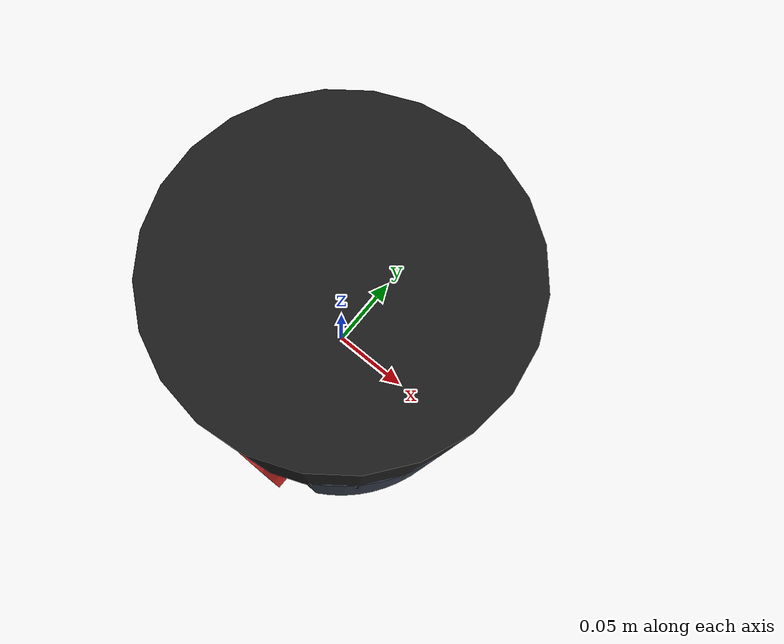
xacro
<?xml version="1.0"?>
<robot name="kamu_robotu" xmlns:xacro="https://www.ros.org/wiki/xacro" >

  <xacro:arg name="laser_visual" default="false"/>
  <xacro:arg name="imu_visual"   default="false"/>
  <xacro:property name="wheel_radius" value="0.02634" />
  <xacro:property name="wheel_length" value="0.01" />
  <xacro:property name="wheel_seperation" value="0.192" />
  <xacro:property name="chasis_height" value="0.115" />

  <material name="black">
    <color rgba="0.0 0.0 0.0 1.0"/>
  </material>
  <material name="blue">
    <color rgba="0.203125 0.23828125 0.28515625 1.0"/>
  </material>
  <material name="green">
    <color rgba="0.0 0.8 0.0 1.0"/>
  </material>
  <material name="grey">
    <color rgba="0.2 0.2 0.2 1.0"/>
  </material>
  <material name="orange">
    <color rgba="1.0 0.423529411765 0.0392156862745 1.0"/>
  </material>
  <material name="brown">
    <color rgba="0.870588235294 0.811764705882 0.764705882353 1.0"/>
  </material>
  <material name="red">
    <color rgba="0.80078125 0.12890625 0.1328125 1.0"/>
  </material>
  <material name="white">
    <color rgba="1.0 1.0 1.0 1.0"/>
  </material>

  <gazebo reference="base_link">
    <material>Gazebo/FlatBlack</material>
  </gazebo>
  <gazebo reference="wheel_left_link">
    <material>Gazebo/Red</material>
  </gazebo>
  <gazebo reference="wheel_right_link">
    <material>Gazebo/Red</material>
  </gazebo>

  <link name="base_link">
    <!-- pose and inertial -->
    <pose>0 0 0.1 0 0 0</pose>

    <inertial>
      <mass value="8.2573504e-01"/>
      <origin rpy="0 0 0" xyz="0 0 0.1"/>
    <inertia ixx="2.2124416e-03" ixy="-1.2294101e-05" ixz="3.4938785e-05"
               iyy="2.1193702e-03" iyz="-5.0120904e-06"
               izz="2.0064271e-03" />
    </inertial>

    <collision name="collision_chassis">
      <geometry>
        <cylinder length="0.015" radius="0.1"/>
      </geometry>
    </collision>

    <visual>
      <pose>0 0 0 0 1.57080 1.5708</pose>
      <origin rpy="0 0 0" xyz="0 0 0"/>
      <geometry>
        <mesh filename="package://kamu_robotu_gazebo/models/meshes/base.STL" scale="1 1 1"/>
      </geometry>
      <material name="blue"/>
    </visual>

    <!-- caster front -->
    <collision name="caster_front_collision">
      <origin rpy=" 0 0 0" xyz="0.05 0 -${chasis_height/2}"/>
      <geometry>
        <sphere radius="0.0239"/>
      </geometry>
      <surface>
        <friction>
          <ode>
            <mu>0</mu>
            <mu2>0</mu2>
            <slip1>1.0</slip1>
            <slip2>1.0</slip2>
          </ode>
        </friction>
      </surface>
    </collision>

    <visual name="caster_front_visual">
      <origin rpy=" 0 0 0" xyz="0.05 0 -${chasis_height/2}"/>
      <geometry>
        <sphere radius="0.0239"/>
      </geometry>
    </visual>

    <!-- caster back -->
    <collision name="caster_back_collision">
      <origin rpy=" 0 0 0" xyz="-0.05 0 -${chasis_height/2}"/>
      <geometry>
        <sphere radius="0.0238"/>
      </geometry>
      <surface>
        <friction>
          <ode>
            <mu>0</mu>
            <mu2>0</mu2>
            <slip1>1.0</slip1>
            <slip2>1.0</slip2>
          </ode>
        </friction>
      </surface>
    </collision>

    <visual name="caster_back_visual">
      <origin rpy=" 0 0 0" xyz="-0.05 0 -${chasis_height/2}"/>
      <geometry>
        <sphere radius="0.0239"/>
      </geometry>
    </visual>
  </link>

  <!-- Create wheel right -->
  <link name="wheel_right_link">
    <inertial>
      <origin rpy="0 1.5707 1.5707" xyz="0 0 0"/>
      <mass value="2.8498940e-02" />
      <inertia ixx="1.1175580e-05" ixy="-4.2369783e-11" ixz="-5.9381719e-09"
               iyy="1.1192413e-05" iyz="-1.4400107e-11"
               izz="2.0712558e-05" />
    </inertial>

    <collision name="wheel_right_link_collision">
      <origin rpy="0 1.5707 1.5707" xyz="0 0 0" />
      <geometry>
        <cylinder length="${wheel_length}" radius="${wheel_radius}"/>
      </geometry>
    </collision>

    <visual name="wheel_right_link_visual">
      <origin rpy="0 1.5707 1.5707" xyz="0 0 0"/>
      <geometry>
        <cylinder length="${wheel_length}" radius="${wheel_radius}"/>
      </geometry>
    </visual>
  </link>

  <!-- Left Wheel link -->
  <link name="wheel_left_link">
    <inertial>
      <origin rpy="0 1.5707 1.5707" xyz="0 0 0"/>
      <mass value="2.8498940e-02" />
      <inertia ixx="1.1175580e-05" ixy="-4.2369783e-11" ixz="-5.9381719e-09"
               iyy="1.1192413e-05" iyz="-1.4400107e-11"
               izz="2.0712558e-05" />
    </inertial>

    <collision name="wheel_left_link_collision">
      <origin rpy="0 1.5707 1.5707" xyz="0 0 0" />
      <geometry>
        <cylinder length="${wheel_length}" radius="${wheel_radius}"/>
      </geometry>
    </collision>

    <visual name="wheel_left_link_visual">
      <origin rpy="0 1.5707 1.5707" xyz="0 0 0"/>
      <geometry>
        <cylinder length="${wheel_length}" radius="${wheel_radius}"/>
      </geometry>
    </visual>
  </link>

  <!--   Joint for right wheel  -->
  <joint name="wheel_right_joint" type="continuous">
    <origin rpy="0 0 0" xyz="0 ${wheel_seperation/2} -${chasis_height/2}"/>
    <child link="wheel_right_link" />
    <parent link="base_link"/>
    <axis rpy="0 0 0" xyz="0 1 0"/>
    <limit effort="10000" velocity="1000"/>
    <joint_properties damping="1.0" friction="1.0" />
  </joint>

  <!--   Joint for left wheel  -->
  <joint name="wheel_left_joint" type="continuous">
    <origin rpy="0 0 0" xyz="0 -${wheel_seperation/2} -${chasis_height/2}"/>
    <child link="wheel_left_link" />
    <parent link="base_link"/>
    <axis rpy="0 0 0" xyz="0 1 0"/>
    <limit effort="10000" velocity="1000"/>
    <joint_properties damping="1.0" friction="1.0" />
  </joint>

  <joint name="imu_joint" type="fixed">
    <parent link="base_link"/>
    <child link="imu_link"/>
    <origin xyz="-0.032 0 ${chasis_height}" rpy="0 0 0"/>
  </joint>

  <link name="imu_link"/>

  <joint name="base_footprint_joint" type="fixed">
    <parent link="base_link"/>
    <child link="base_footprint"/>
    <origin xyz="0 0 -0.12" rpy="0 0 0"/>
  </joint>

  <link name="base_footprint"/>

  <joint name="scan_joint" type="fixed">
    <parent link="base_footprint"/>
    <child link="base_scan"/>
    <origin xyz="0 0 ${chasis_height+0.085}" rpy="0 0 0"/>
  </joint>

  <link name="base_scan">
    <visual>
      <origin xyz="0 0 0" rpy="0 0 0"/>
      <geometry>
        <cylinder length="0.1" radius="0.1"/>
      </geometry>
      <material name="dark"/>
    </visual>

    <collision>
      <origin xyz="0 0 0" rpy="0 0 0"/>
      <geometry>
        <cylinder length="0.0315" radius="0.055"/>
      </geometry>
    </collision>

    <inertial>
      <mass value="0.114" />
      <origin xyz="0 0 0" />
      <inertia ixx="0.001" ixy="0.0" ixz="0.0"
               iyy="0.001" iyz="0.0"
               izz="0.001" />
    </inertial>
  </link>

  <!-- Gazebo side -->

  <gazebo reference="imu_link">
    <sensor type="imu" name="imu">
      <always_on>true</always_on>
      <visualize>$(arg imu_visual)</visualize>
    </sensor>
    <material>Gazebo/FlatBlack</material>
  </gazebo>

  <gazebo>
    <plugin name="kamu_robotu_controller" filename="libgazebo_ros_diff_drive.so">
      <legacyMode>false</legacyMode>
      <alwaysOn>true</alwaysOn>
      <updateRate>20</updateRate>
      <leftJoint>wheel_left_joint</leftJoint>
      <rightJoint>wheel_right_joint</rightJoint>
      <wheelSeparation>0.2</wheelSeparation>
      <wheelDiameter>0.048</wheelDiameter>
      <wheelAcceleration>1</wheelAcceleration>
      <wheelTorque>10</wheelTorque>
      <commandTopic>cmd_vel</commandTopic>
      <odometryTopic>odom</odometryTopic>
      <odometryFrame>odom</odometryFrame>
      <robotBaseFrame>base_link</robotBaseFrame>
    </plugin>
  </gazebo>

  <gazebo>
    <plugin name="imu_plugin" filename="libgazebo_ros_imu.so">
      <alwaysOn>true</alwaysOn>
      <bodyName>imu_link</bodyName>
      <frameName>imu_link</frameName>
      <topicName>imu</topicName>
      <serviceName>imu_service</serviceName>
      <gaussianNoise>0.0</gaussianNoise>
      <updateRate>200</updateRate>
      <imu>
        <noise>
          <type>gaussian</type>
          <rate>
            <mean>0.0</mean>
            <stddev>2e-4</stddev>
            <bias_mean>0.0000075</bias_mean>
            <bias_stddev>0.0000008</bias_stddev>
          </rate>
          <accel>
            <mean>0.0</mean>
            <stddev>1.7e-2</stddev>
            <bias_mean>0.1</bias_mean>
            <bias_stddev>0.001</bias_stddev>
          </accel>
        </noise>
      </imu>
    </plugin>
  </gazebo>

  <gazebo reference="base_scan">
    <material>Gazebo/FlatBlack</material>
    <sensor type="ray" name="lds_lfcd_sensor">
      <pose>0 0 -0.2 0 0 0</pose>
      <visualize>$(arg laser_visual)</visualize>
      <update_rate>1</update_rate>
      <ray>
        <scan>
          <horizontal>
            <samples>128</samples>
            <resolution>1</resolution>
            <min_angle>0.0</min_angle>
            <max_angle>6.28319</max_angle>
          </horizontal>
        </scan>
        <range>
          <min>0.092</min>
          <max>1.2</max>
          <resolution>0.02</resolution>
        </range>
        <noise>
          <type>gaussian</type>
          <mean>0.0</mean>
          <stddev>6e-3</stddev>
        </noise>
      </ray>
      <plugin name="gazebo_ros_lds_lfcd_controller" filename="libgazebo_ros_laser.so">
        <topicName>scan</topicName>
        <frameName>base_scan</frameName>
      </plugin>
    </sensor>
  </gazebo>

  -->

</robot>
